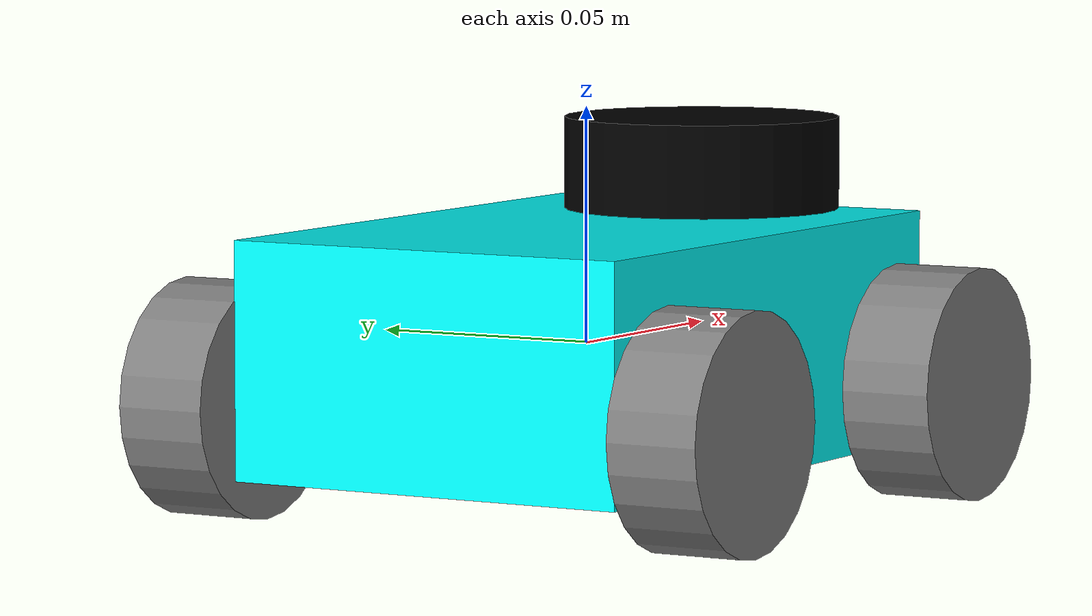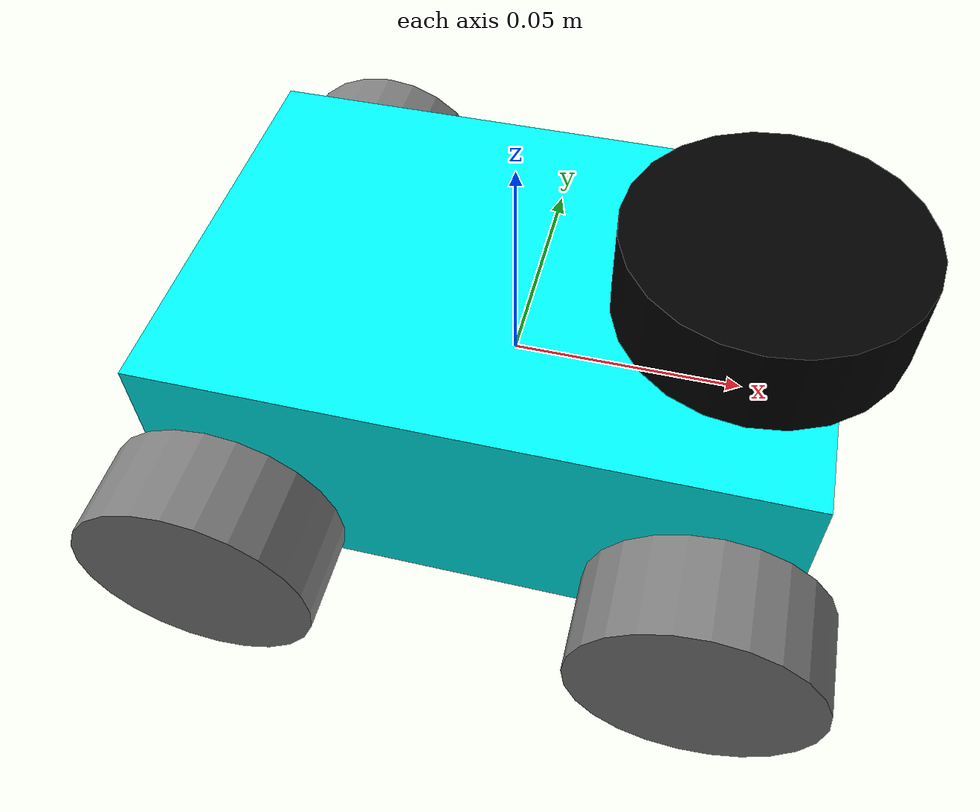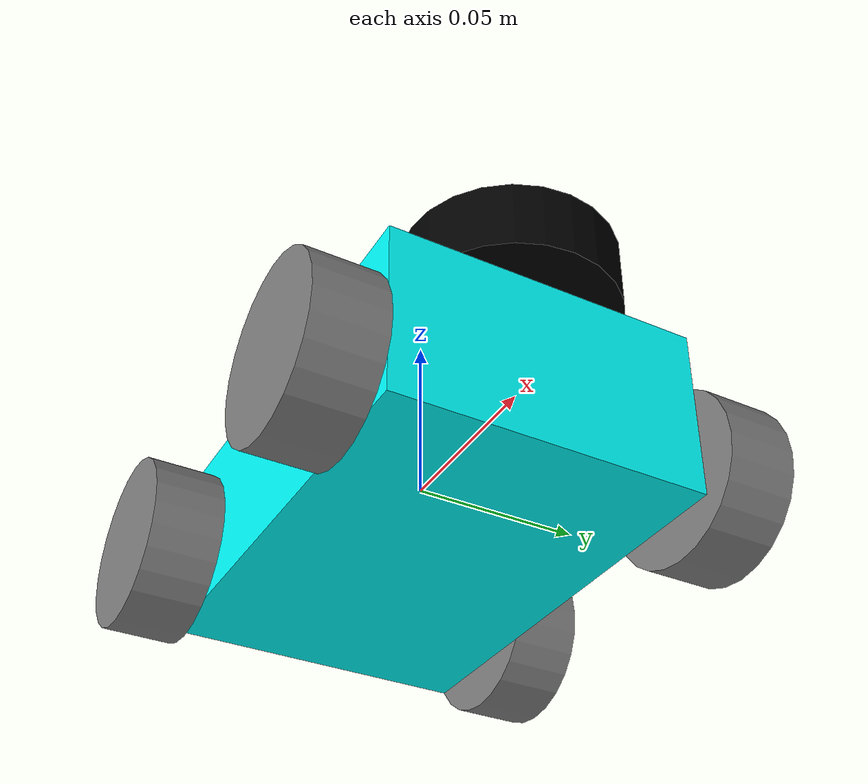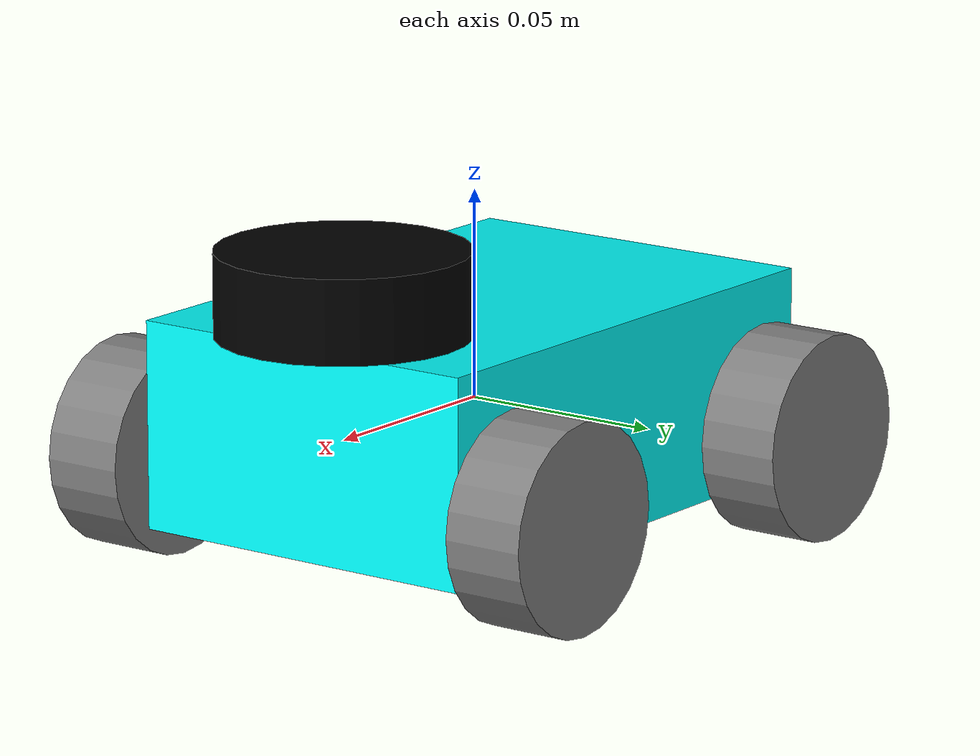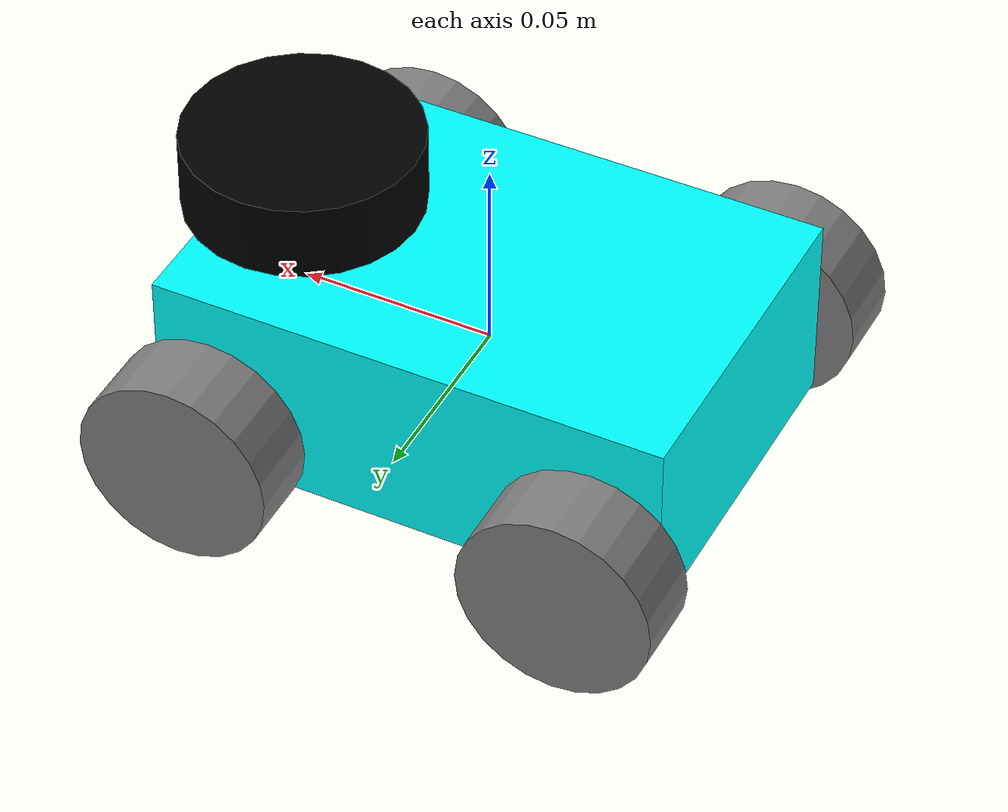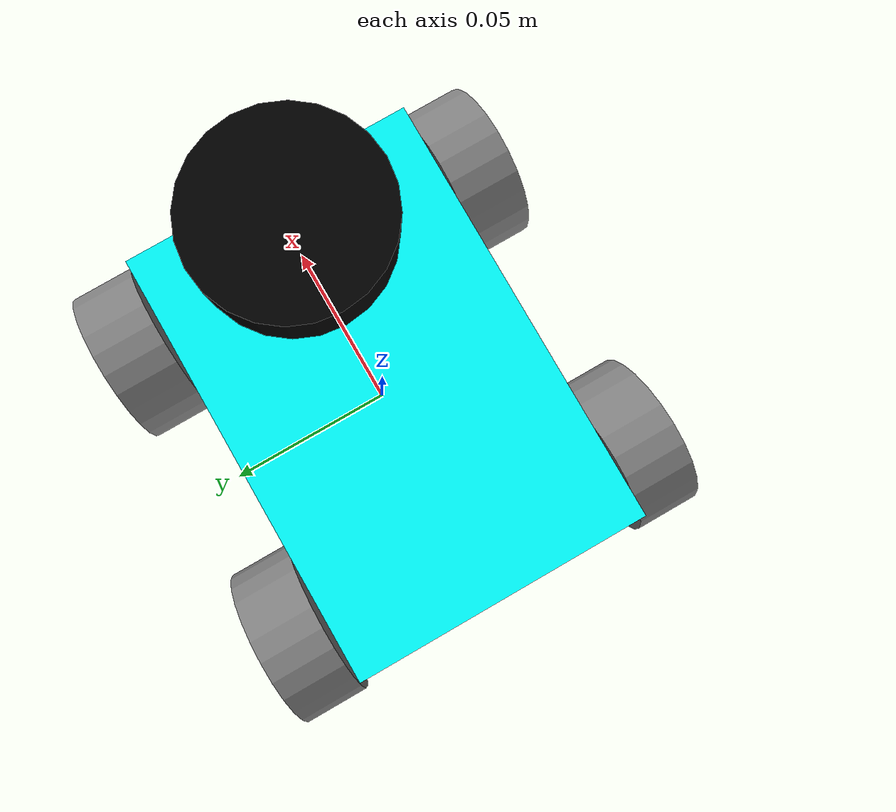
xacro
<?xml version="1.0"?>
<!-- Updated to support proper Ackermann steering: front wheels have a steering joint (revolute Z)
and an inner wheel‑rotation joint (continuous Y). -->
<robot xmlns:xacro="http://www.ros.org/wiki/xacro" name="robotcar">

  <!-- ───────────────────────────────────────────────
       PARAMETERS
       ─────────────────────────────────────────────── -->
  <xacro:property name="base_width" value="0.09" />
  <xacro:property name="base_length" value="0.133" />
  <xacro:property name="base_height" value="0.05" />

  <xacro:property name="wheel_radius" value="0.025" />
  <xacro:property name="wheel_width" value="0.02" />
  <xacro:property name="wheel_xoff" value="0.05" />
  <xacro:property name="wheel_ygap" value="0.013" />
  <xacro:property name="wheel_zoff" value="0.01" />
  <!-- ─────────── LiDAR parameters (configurable) ─────────── -->
  <xacro:property name="lidar_x" value="0.05" />
  <xacro:property name="lidar_y" value="0.00" />
  <!-- Default mount height: sits on top of base -->
  <xacro:property name="lidar_z" value="${base_height/2 + lidar_height/2}" />
  <xacro:property name="lidar_radius" value="0.03" />
  <xacro:property name="lidar_height" value="0.02" />
  <xacro:property name="lidar_hfov" value="${2*pi}" />   <!-- 360 deg scan -->
  <xacro:property name="lidar_samples" value="500" />
  <xacro:property name="lidar_min_range" value="0.05" />
  <xacro:property name="lidar_max_range" value="10.0" />

  <!-- Maximum steering angle (rad) → 30 deg -->
  <xacro:property name="steer_limit" value="0.523598" />

  <!-- ───────────────────────────────────────────────
       BASE
       ─────────────────────────────────────────────── -->
  <link name="base_link">
    <visual>
      <geometry>
        <box size="${base_length} ${base_width} ${base_height}" />
      </geometry>
      <material name="Cyan">
        <color rgba="0 1 1 1" />
      </material>
    </visual>
  </link>

  <link name="base_footprint" />
  <joint name="base_joint" type="fixed">
    <parent link="base_link" />
    <child link="base_footprint" />
    <origin xyz="0 0 ${-(wheel_radius + wheel_zoff)}" rpy="0 0 0" />
  </joint>

  <!-- ───────────────────────────────────────────────
       MACROS
       ─────────────────────────────────────────────── -->

  <xacro:macro name="drive_wheel" params="prefix x_reflect y_reflect">
    <link name="${prefix}_link">
      <inertial>
        <origin xyz="0 0 0" rpy="0 0 0" />
        <mass value="0.1" />
        <inertia ixx="1e-4" ixy="0" ixz="0" iyy="1e-4" iyz="0" izz="1e-4" />
      </inertial>
      <visual>
        <origin xyz="0 0 0" rpy="${pi/2} 0 0" />
        <geometry>
          <cylinder radius="${wheel_radius}" length="${wheel_width}" />
        </geometry>
        <material name="Gray">
          <color rgba="0.5 0.5 0.5 1" />
        </material>
      </visual>
    </link>

    <joint name="${prefix}_joint" type="continuous">
      <parent link="base_link" />
      <child link="${prefix}_link" />
      <origin xyz="${x_reflect*wheel_xoff} ${y_reflect*(base_width/2+wheel_ygap)} ${-wheel_zoff}"
        rpy="0 0 0" />
      <axis xyz="0 1 0" />
    </joint>
  </xacro:macro>

  <!-- Front wheel with steering hub + wheel rotation -->
  <xacro:macro name="steer_wheel" params="prefix x_reflect y_reflect">
    <!-- Steering hub rotates about Z -->
    <link name="${prefix}_hub_link">
      <inertial>
        <origin xyz="0 0 0" rpy="0 0 0" />
        <mass value="0.1" />
        <inertia ixx="1e-4" ixy="0" ixz="0" iyy="1e-4" iyz="0" izz="1e-4" />
      </inertial>
    </link>

    <joint name="${prefix}_steer_joint" type="revolute">
      <parent link="base_link" />
      <child link="${prefix}_hub_link" />
      <origin xyz="${x_reflect*wheel_xoff} ${y_reflect*(base_width/2+wheel_ygap)} 0" rpy="0 0 0" />
      <axis xyz="0 0 1" />
      <limit effort="5" velocity="2" lower="-${steer_limit}" upper="${steer_limit}" />
    </joint>

    <!-- Actual wheel rotates about Y inside hub -->
    <link name="${prefix}_link">
      <inertial>
        <origin xyz="0 0 0" rpy="0 0 0" />
        <mass value="0.1" />
        <inertia ixx="1e-4" ixy="0" ixz="0" iyy="1e-4" iyz="0" izz="1e-4" />
      </inertial>
      <visual>
        <origin xyz="0 0 0" rpy="${pi/2} 0 0" />
        <geometry>
          <cylinder radius="${wheel_radius}" length="${wheel_width}" />
        </geometry>
        <material name="Gray">
          <color rgba="0.5 0.5 0.5 1" />
        </material>
      </visual>
    </link>

    <joint name="${prefix}_wheel_joint" type="continuous">
      <parent link="${prefix}_hub_link" />
      <child link="${prefix}_link" />
      <origin xyz="0 0 ${-wheel_zoff}" rpy="0 0 0" />
      <axis xyz="0 1 0" />
    </joint>
  </xacro:macro>

  <!-- ───────────────────────────────────────────────
       INSTANTIATE WHEELS
       ─────────────────────────────────────────────── -->
  <xacro:drive_wheel prefix="drivewhl_l" x_reflect="-1" y_reflect="1" />
  <xacro:drive_wheel prefix="drivewhl_r" x_reflect="-1" y_reflect="-1" />
  <xacro:steer_wheel prefix="steerwhl_l" x_reflect="1" y_reflect="1" />
  <xacro:steer_wheel prefix="steerwhl_r" x_reflect="1" y_reflect="-1" />

  <!-- ───────────────────────────────────────────────
       2D LIDAR (configurable)
       ─────────────────────────────────────────────── -->
  <link name="lidar_link">
    <visual>
      <origin xyz="0 0 0" rpy="0 0 0" />
      <geometry>
        <cylinder radius="${lidar_radius}" length="${lidar_height}" />
      </geometry>
      <material name="Black">
        <color rgba="0 0 0 1" />
      </material>
    </visual>
    <collision>
      <origin xyz="0 0 0" rpy="0 0 0" />
      <geometry>
        <cylinder radius="${lidar_radius}" length="${lidar_height}" />
      </geometry>
    </collision>
    <inertial>
      <mass value="0.05" />
      <origin xyz="0 0 0" rpy="0 0 0" />
      <inertia ixx="1e-5" ixy="0" ixz="0" iyy="1e-5" iyz="0" izz="1e-5" />
    </inertial>
  </link>

  <joint name="lidar_joint" type="fixed">
    <parent link="base_link" />
    <child link="lidar_link" />
    <origin xyz="${lidar_x} ${lidar_y} ${lidar_z}" rpy="0 0 0" />
  </joint>

  <!-- Optional Gazebo sensor plugin -->
  <gazebo reference="lidar_link">
    <sensor name="lidar" type="ray">
      <update_rate>20</update_rate>
      <ray>
        <scan>
          <horizontal>
            <samples>${lidar_samples}</samples>
            <min_angle>${-lidar_hfov/2}</min_angle>
            <max_angle>${lidar_hfov/2}</max_angle>
          </horizontal>
        </scan>
        <range>
          <min>${lidar_min_range}</min>
          <max>${lidar_max_range}</max>
        </range>
      </ray>
      <plugin name="gazebo_ros_laser" filename="libgazebo_ros_laser.so">
        <topicName>scan</topicName>
        <frameName>lidar_link</frameName>
      </plugin>
    </sensor>
  </gazebo>

</robot>
